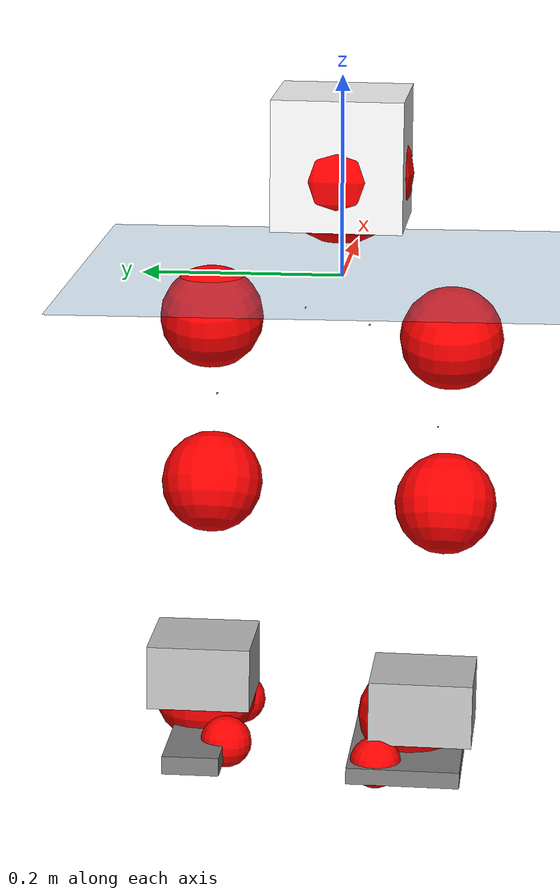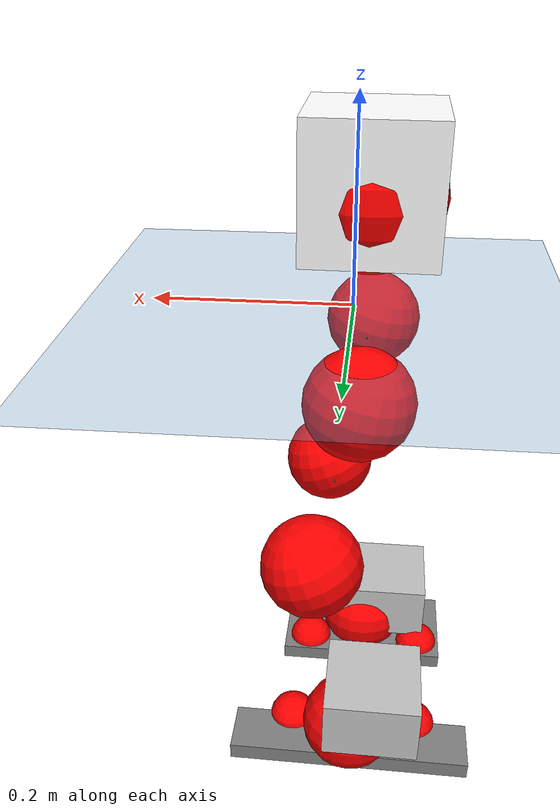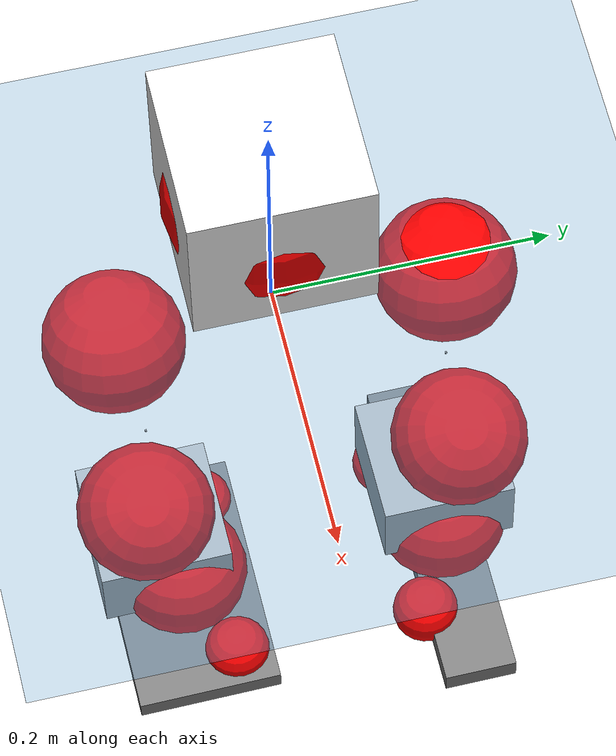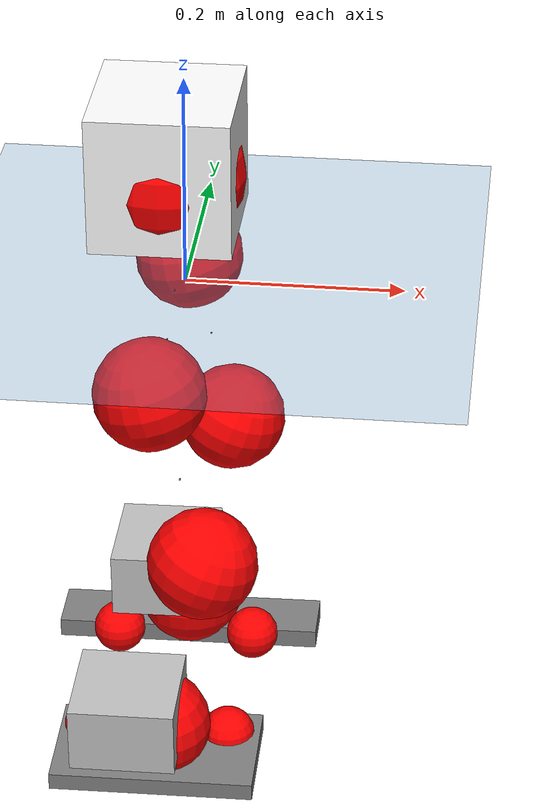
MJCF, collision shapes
<mujoco model="pi_12dof_release_v1">
  <compiler angle="radian" assetdir="assets" balanceinertia="true" inertiafromgeom="false"/>

  <option timestep="0.005" density="1.2" viscosity="2e-05"/>

  <size nkey="1"/>

  <visual>
    <quality shadowsize="8192"/>
    <map shadowclip="0.5"/>
  </visual>

  <default>
    <default class="/">
      <joint armature="0.01" damping="0.01" frictionloss="0.01"/>
      <geom contype="0" conaffinity="0" group="1" solref="-1000 -80"/>
      <site size="0.01 0.005 0.005" group="5"/>
      <general forcelimited="true" biastype="affine" gainprm="20" biasprm="0 -20 -0.5"/>
      <default class="foot">
        <geom size="0.0845 0.036 0.005" type="box" condim="6" group="4" priority="1" friction="0.9 0.2 0.2" solimp="0.015 1 0.005"/>
      </default>
      <default class="reward_collision_sphere">
        <geom group="5" rgba="1 0 0 1"/>
      </default>
    </default>
  </default>

  <asset>
    <texture type="skybox" colorspace="auto" name="//unnamed_texture_0" builtin="gradient" rgb1="0.95 0.95 0.95" rgb2="0.95 0.95 0.95" width="100" height="600"/>
    <texture type="2d" colorspace="auto" name="texplane" builtin="checker" rgb1="0.345 0.575 0.748" rgb2="0.345 0.575 0.748" markrgb="1 1 1" width="512" height="512"/>
    <material name="MatPlane" class="/" texture="texplane" texuniform="true" texrepeat="2 2" specular="0.9"/>
    <mesh name="baselink_1" class="/" file="baselink_1.STL"/>
    <mesh name="r_hip_pitch_link" class="/" file="r_hip_pitch_link.STL"/>
    <mesh name="r_hip_roll_link" class="/" file="r_hip_roll_link.STL"/>
    <mesh name="r_thigh_link" class="/" file="r_thigh_link.STL"/>
    <mesh name="r_calf_link" class="/" file="r_calf_link.STL"/>
    <mesh name="r_ankle_pitch_link" class="/" file="r_ankle_pitch_link.STL"/>
    <mesh name="r_ankle_roll_link" class="/" file="r_ankle_roll_link.STL"/>
    <mesh name="l_hip_pitch_link" class="/" file="l_hip_pitch_link.STL"/>
    <mesh name="l_hip_roll_link" class="/" file="l_hip_roll_link.STL"/>
    <mesh name="l_thigh_link" class="/" file="l_thigh_link.STL"/>
    <mesh name="l_calf_link" class="/" file="l_calf_link.STL"/>
    <mesh name="l_ankle_pitch_link" class="/" file="l_ankle_pitch_link.STL"/>
    <mesh name="l_ankle_roll_link" class="/" file="l_ankle_roll_link.STL"/>
  </asset>

  <worldbody>
    <geom name="floor" class="/" size="100 100 0.125" type="plane" group="0" material="MatPlane"/>
    <light name="toplight_shadow" class="/" pos="0 0 5" dir="0.0990148 0.0990148 -0.990148" type="directional" ambient="0.04 0.04 0.04" diffuse="0.55 0.55 0.55" specular="0.12 0.12 0.12"/>
    <light name="toplight_fill" class="/" pos="0 0 5" dir="0.0990148 0.0990148 -0.990148" type="directional" castshadow="false" ambient="0.04 0.04 0.04" diffuse="0.3 0.3 0.3" specular="0.08 0.08 0.08"/>
    <body name="trunk" pos="-0.0144599 0.000401598 0.00678331" quat="0.999979 0.00494865 -0.00326228 -0.00267511">
      <inertial pos="0.0161741 -0.00658652 0.059795" quat="0.688049 0.00308852 0.00661709 0.725627" mass="5.08032" diaginertia="0.00915826 0.0503938 0.0217107"/>
      <joint name="//unnamed_joint_0" type="free"/>
      <geom name="//unnamed_geom_1" class="/" type="mesh" density="0" rgba="1 1 1 1" mesh="baselink_1"/>
      <geom name="//unnamed_geom_2" class="/" size="0.0644898 0.0644898 0.0644898" pos="0 0 0.114611" type="box" rgba="1 1 1 1"/>
      <geom name="//unnamed_geom_3" class="reward_collision_sphere" size="0.0709388" pos="0 0 0.100285"/>
      <site name="imu" class="/" pos="0.00323204 -0.038501 -0.0628038" size="0.012898"/>
      <camera name="track" class="/" pos="0 -2.87029 0" quat="0.707107 0.707107 0 0" mode="trackcom"/>
      <camera name="ego_camera" class="/" pos="0.0751204 0 0.257875" quat="-0.5 -0.5 0.5 0.5"/>
      <body name="r_hip_pitch_link" pos="0.000169226 -0.0292544 -0.0532183" quat="0.992374 0.00274043 -0.123227 -0.00102908">
        <inertial pos="-0.00218794 -0.0693423 0.00140031" quat="-0.0229371 0.707341 -0.0260069 0.706021" mass="0.827608" diaginertia="8.603e-05 0.000520972 0.000498728"/>
        <joint name="r_hip_pitch_joint" class="/" pos="0 0 0" axis="0.0231501 -0.999369 -0.0269495" stiffness="0.0193418" range="-1.60602 1.20834" armature="0.0161413" damping="0" frictionloss="0.00637311"/>
        <geom name="//unnamed_geom_4" class="/" type="mesh" density="0" rgba="0.75294 0.75294 0.75294 1" mesh="r_hip_pitch_link"/>
        <geom name="//unnamed_geom_5" class="/" size="0.000644898 0.000644898 0.000644898" type="box" rgba="0.75294 0.75294 0.75294 1"/>
        <body name="r_hip_roll_link" pos="-0.0067962 -0.0820948 -0.0078743" quat="0.999983 0.000924374 -0.00397461 0.00416599">
          <inertial pos="-0.011553 0.00921961 -0.0743204" quat="0.705642 -0.0782021 -0.08203 0.699446" mass="0.939776" diaginertia="0.000345624 0.00189343 0.000709725"/>
          <joint name="r_hip_roll_joint" class="/" pos="0 0 0" axis="-0.998713 -0.0381993 0.0333784" range="-0.0399848 0.69459" armature="0.0163461" damping="0.0675231" frictionloss="0.00556789"/>
          <geom name="//unnamed_geom_6" class="/" type="mesh" density="0" rgba="0.75294 0.75294 0.75294 1" mesh="r_hip_roll_link"/>
          <geom name="//unnamed_geom_7" class="/" size="0.000644898 0.000644898 0.000644898" type="box" rgba="0.75294 0.75294 0.75294 1"/>
          <geom name="//unnamed_geom_8" class="reward_collision_sphere" size="0.0515918"/>
          <body name="r_thigh_link" pos="-0.00141474 0.0129621 -0.0994643" quat="0.999991 -0.00426123 0.000693575 0.000496392">
            <inertial pos="0.0112008 0.000196913 -0.0773602" quat="0.74219 0.669631 -0.00482277 -0.026914" mass="0.23297" diaginertia="0.000113221 0.000417474 0.00026919"/>
            <joint name="r_thigh_joint" class="/" pos="0 0 0" axis="-0.0078791 -0.00191748 -0.999967" stiffness="0.0410182" range="-0.0848434 0.427795" armature="0.0177271" damping="0" frictionloss="0.0222714"/>
            <geom name="//unnamed_geom_9" class="/" type="mesh" density="0" rgba="0.75294 0.75294 0.75294 1" mesh="r_thigh_link"/>
            <geom name="//unnamed_geom_10" class="/" size="0.000644898 0.000644898 0.000644898" type="box" rgba="0.75294 0.75294 0.75294 1"/>
            <body name="r_calf_link" pos="-0.00140539 -0.00805013 -0.0875421" quat="0.94741 0.00507027 0.31998 0.00123516">
              <inertial pos="-0.00765798 0.0104858 -0.102" quat="0.99844 -0.0411584 -0.00443994 -0.037478" mass="1.76375" diaginertia="0.00440026 0.0235222 0.00128676"/>
              <joint name="r_calf_joint" class="/" pos="0 0 0" axis="-0.0458349 -0.998283 -0.036461" stiffness="0.0587827" range="-1.92925 0.674717" armature="0.0146198" damping="0" frictionloss="0.00620778"/>
              <geom name="//unnamed_geom_11" class="/" type="mesh" density="0" rgba="0.75294 0.75294 0.75294 1" mesh="r_calf_link"/>
              <geom name="//unnamed_geom_12" class="/" size="0.000644898 0.000644898 0.000644898" type="box" rgba="0.75294 0.75294 0.75294 1"/>
              <geom name="//unnamed_geom_13" class="reward_collision_sphere" size="0.0515918"/>
              <body name="r_ankle_pitch_link" pos="0.00130566 0.0143165 -0.200178" quat="0.980046 9.50974e-05 -0.198769 0.000143604">
                <inertial pos="-0.00315138 0.0153941 0.000855184" quat="-0.00586995 0.720753 -0.0415261 0.691922" mass="0.365924" diaginertia="0.000340474 0.00155472 0.000674024"/>
                <joint name="r_ankle_pitch_joint" class="/" pos="0 0 0" axis="-0.0519973 -0.997836 0.0402551" stiffness="0.000756616" range="-1.42951 0.480057" armature="0.0126661" damping="0.0577276" frictionloss="0.00774929"/>
                <geom name="//unnamed_geom_14" class="/" type="mesh" density="0" rgba="0.75294 0.75294 0.75294 1" mesh="r_ankle_pitch_link"/>
                <geom name="//unnamed_geom_15" class="/" size="0.050302 0.0515918 0.0322449" type="box" rgba="0.75294 0.75294 0.75294 1"/>
                <body name="r_ankle_roll_link" pos="0.0758948 0.0148803 0.0049859" quat="1 -0.000128382 -0.000325566 9.47891e-05">
                  <inertial pos="-0.0251732 7.94988e-05 -0.0200475" quat="0.549304 0.426206 0.486852 0.528761" mass="1.11799" diaginertia="0.00113485 0.00635 0.00193347"/>
                  <joint name="r_ankle_roll_joint" class="/" pos="0 0 0" axis="-0.997616 -0.0469082 0.0506208" range="0.106362 0.148778" armature="0.00505466" damping="0.0110725" frictionloss="0.0121487"/>
                  <geom name="//unnamed_geom_16" class="/" type="mesh" density="0" rgba="0.75294 0.75294 0.75294 1" mesh="r_ankle_roll_link"/>
                  <geom name="//unnamed_geom_17" class="/" type="mesh" rgba="0.75294 0.75294 0.75294 1" mesh="r_ankle_roll_link"/>
                  <geom name="right_foot" class="foot" size="0.0976435 0.0563021 0.00830049" pos="-0.0510819 0 -0.063036"/>
                  <geom name="//unnamed_geom_19" class="reward_collision_sphere" size="0.0515918" pos="-0.0500802 0 -0.0286527"/>
                  <geom name="//unnamed_geom_20" class="reward_collision_sphere" size="0.0257959" pos="0.0150241 0.0287029 -0.0573055"/>
                  <geom name="//unnamed_geom_21" class="reward_collision_sphere" size="0.0257959" pos="-0.120193 0.0287029 -0.0573055"/>
                  <site name="right_foot" class="foot" pos="-0.0510819 0 -0.063036" size="0.012898"/>
                </body>
              </body>
            </body>
          </body>
        </body>
      </body>
      <body name="l_hip_pitch_link" pos="-0.00155502 0.0347947 -0.0371326" quat="0.992186 0.00043908 -0.124766 -0.000203804">
        <inertial pos="-0.00463616 0.0645812 0.00972799" quat="-0.0313637 0.756052 0.0271423 0.653196" mass="0.671257" diaginertia="0.000123324 0.000611242 0.000492448"/>
        <joint name="l_hip_pitch_joint" class="/" pos="0 0 0" axis="-0.00317449 0.997457 -0.0711933" stiffness="0.0269647" range="-1.34906 1.78207" armature="0.0139365" damping="0" frictionloss="0.013697"/>
        <geom name="//unnamed_geom_22" class="/" type="mesh" density="0" rgba="0.75294 0.75294 0.75294 1" mesh="l_hip_pitch_link"/>
        <geom name="//unnamed_geom_23" class="/" size="0.000644898 0.000644898 0.000644898" type="box" rgba="0.75294 0.75294 0.75294 1"/>
        <body name="l_hip_roll_link" pos="-0.000777219 0.0934568 -0.0122657" quat="1 -0.000486856 0.000659766 -0.000240811">
          <inertial pos="-6.14331e-05 -0.000219428 -0.0893655" quat="0.706551 -0.0954604 -0.066157 0.698066" mass="0.657608" diaginertia="0.000319898 0.00156174 0.000653857"/>
          <joint name="l_hip_roll_joint" class="/" pos="0 0 0" axis="-0.999696 -0.0243339 0.00404038" stiffness="0.0735066" range="-0.470802 -0.10001" armature="0.0169947" damping="0" frictionloss="0.0161775"/>
          <geom name="//unnamed_geom_24" class="/" type="mesh" density="0" rgba="0.75294 0.75294 0.75294 1" mesh="l_hip_roll_link"/>
          <geom name="//unnamed_geom_25" class="/" size="0.000644898 0.000644898 0.000644898" type="box" rgba="0.75294 0.75294 0.75294 1"/>
          <geom name="//unnamed_geom_26" class="reward_collision_sphere" size="0.0515918"/>
          <body name="l_thigh_link" pos="-0.000920134 -0.00284971 -0.0861295" quat="0.999999 -0.000861031 -0.000226832 -0.00110935">
            <inertial pos="0.00514645 -0.0156803 -0.068823" quat="0.657168 0.753201 -0.0230287 0.0169657" mass="0.228137" diaginertia="0.000129678 0.000540278 0.000386354"/>
            <joint name="l_thigh_joint" class="/" pos="0 0 0" axis="0.0123293 0.0223438 -0.999674" range="-0.602909 0.105858" armature="0.0085473" damping="0.0681596" frictionloss="0.00811037"/>
            <geom name="//unnamed_geom_27" class="/" type="mesh" density="0" rgba="0.75294 0.75294 0.75294 1" mesh="l_thigh_link"/>
            <geom name="//unnamed_geom_28" class="/" size="0.000644898 0.000644898 0.000644898" type="box" rgba="0.75294 0.75294 0.75294 1"/>
            <body name="l_calf_link" pos="-0.00544836 0.0072728 -0.0984462" quat="0.949104 -0.000854977 0.314924 0.00483761">
              <inertial pos="-0.0135518 -0.00459665 -0.0861704" quat="0.998811 0.0256159 0.0413629 -0.00321026" mass="1.78502" diaginertia="0.00356562 0.0215211 0.00107938"/>
              <joint name="l_calf_joint" class="/" pos="0 0 0" axis="0.0309504 0.999291 -0.0214528" stiffness="0.017601" range="-0.616735 1.81556" armature="0.010344" damping="0.00526753" frictionloss="0.0203938"/>
              <geom name="//unnamed_geom_29" class="/" type="mesh" density="0" rgba="0.75294 0.75294 0.75294 1" mesh="l_calf_link"/>
              <geom name="//unnamed_geom_30" class="/" size="0.000644898 0.000644898 0.000644898" type="box" rgba="0.75294 0.75294 0.75294 1"/>
              <geom name="//unnamed_geom_31" class="reward_collision_sphere" size="0.0515918"/>
              <body name="l_ankle_pitch_link" pos="0.00374611 0.000469841 -0.186721" quat="0.980035 0.000818897 -0.198825 -0.000136832">
                <inertial pos="0.00611067 -8.64591e-05 -0.00123671" quat="-0.000525268 0.707576 -0.00270115 0.706632" mass="0.435341" diaginertia="0.000320545 0.00120515 0.000738871"/>
                <joint name="l_ankle_pitch_joint" class="/" pos="0 0 0" axis="-0.00931006 0.999956 0.00104666" stiffness="0.0400003" range="-0.516 1.29432" armature="0.0124536" damping="0.0238688" frictionloss="0.00879062"/>
                <geom name="//unnamed_geom_32" class="/" type="mesh" density="0" rgba="0.75294 0.75294 0.75294 1" mesh="l_ankle_pitch_link"/>
                <geom name="//unnamed_geom_33" class="/" size="0.050302 0.0515918 0.0322449" type="box" rgba="0.75294 0.75294 0.75294 1"/>
                <body name="l_ankle_roll_link" pos="0.0728484 0.000532844 -0.00719505" quat="1 -3.60692e-05 -1.7785e-06 -0.000171866">
                  <inertial pos="-0.0139559 -0.00124947 -0.0217184" quat="0.528254 0.445185 0.439354 0.574218" mass="1.10167" diaginertia="0.00104612 0.0062307 0.00144819"/>
                  <joint name="l_ankle_roll_joint" class="/" pos="0 0 0" axis="-0.99773 0.0143887 -0.0657921" stiffness="0.0590035" range="-0.186224 0.0209955" armature="0.0161752" damping="0" frictionloss="0.0166586"/>
                  <geom name="//unnamed_geom_34" class="/" type="mesh" density="0" rgba="0.75294 0.75294 0.75294 1" mesh="l_ankle_roll_link"/>
                  <geom name="//unnamed_geom_35" class="/" type="mesh" rgba="0.75294 0.75294 0.75294 1" mesh="l_ankle_roll_link"/>
                  <geom name="left_foot" class="foot" size="0.130244 0.0281733 0.00924829" pos="-0.0510819 0 -0.063036"/>
                  <geom name="//unnamed_geom_37" class="reward_collision_sphere" size="0.0515918" pos="-0.0500802 0 -0.0286527"/>
                  <geom name="//unnamed_geom_38" class="reward_collision_sphere" size="0.0257959" pos="0.0150241 -0.0287029 -0.0573055"/>
                  <geom name="//unnamed_geom_39" class="reward_collision_sphere" size="0.0257959" pos="-0.120193 -0.0287029 -0.0573055"/>
                  <site name="left_foot" class="foot" pos="-0.0510819 0 -0.063036" size="0.012898"/>
                </body>
              </body>
            </body>
          </body>
        </body>
      </body>
    </body>
  </worldbody>

  <contact>
    <pair class="/" geom1="floor" geom2="right_foot" name="//unnamed_contact_1"/>
    <pair class="/" geom1="floor" geom2="left_foot" name="//unnamed_contact_0"/>
  </contact>

  <actuator>
    <general name="r_hip_pitch_joint" class="/" joint="r_hip_pitch_joint" forcerange="-26.2569 26.2569" gainprm="26.0659" biasprm="0 -26.0659 -0.549295"/>
    <general name="r_hip_roll_joint" class="/" joint="r_hip_roll_joint" forcerange="-18.543 18.543" gainprm="26.0659" biasprm="0 -26.0659 -0.549295"/>
    <general name="r_thigh_joint" class="/" joint="r_thigh_joint" forcerange="-29.401 29.401" gainprm="26.0659" biasprm="0 -26.0659 -0.549295"/>
    <general name="r_calf_joint" class="/" joint="r_calf_joint" forcerange="-12.6732 12.6732" gainprm="26.0659" biasprm="0 -26.0659 -0.549295"/>
    <general name="r_ankle_pitch_joint" class="/" joint="r_ankle_pitch_joint" forcerange="-24.3327 24.3327" gainprm="26.0659" biasprm="0 -26.0659 -0.549295"/>
    <general name="r_ankle_roll_joint" class="/" joint="r_ankle_roll_joint" forcerange="-39.8504 39.8504" gainprm="26.0659" biasprm="0 -26.0659 -0.549295"/>
    <general name="l_hip_pitch_joint" class="/" joint="l_hip_pitch_joint" forcerange="-27.3117 27.3117" gainprm="26.0659" biasprm="0 -26.0659 -0.549295"/>
    <general name="l_hip_roll_joint" class="/" joint="l_hip_roll_joint" forcerange="-34.7245 34.7245" gainprm="26.0659" biasprm="0 -26.0659 -0.549295"/>
    <general name="l_thigh_joint" class="/" joint="l_thigh_joint" forcerange="-28.616 28.616" gainprm="26.0659" biasprm="0 -26.0659 -0.549295"/>
    <general name="l_calf_joint" class="/" joint="l_calf_joint" forcerange="-26.9165 26.9165" gainprm="26.0659" biasprm="0 -26.0659 -0.549295"/>
    <general name="l_ankle_pitch_joint" class="/" joint="l_ankle_pitch_joint" forcerange="-19.5605 19.5605" gainprm="26.0659" biasprm="0 -26.0659 -0.549295"/>
    <general name="l_ankle_roll_joint" class="/" joint="l_ankle_roll_joint" forcerange="-25.7851 25.7851" gainprm="26.0659" biasprm="0 -26.0659 -0.549295"/>
  </actuator>

  <sensor>
    <gyro site="imu" name="imu_angular_velocity"/>
    <velocimeter site="imu" name="imu_linear_velocity"/>
    <framelinvel objtype="site" objname="left_foot" name="left_foot_global_linear_velocity"/>
    <framelinvel objtype="site" objname="right_foot" name="right_foot_global_linear_velocity"/>
  </sensor>

  <keyframe>
    <key name="home" qpos="0 0 0.291 1 0 0 0 0.4 0 0 -0.8 0.4 0 -0.4 0 0 0.8 -0.4 0"/>
  </keyframe>
</mujoco>
